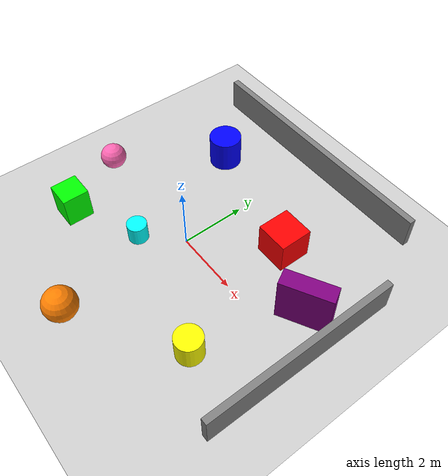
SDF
<?xml version="1.0" ?>
<sdf version="1.6">
  <world name="default">

    <!-- A global light source -->
    <light name='sun' type='directional'>
      <cast_shadows>1</cast_shadows>
      <pose>0 0 10 0 -0 0</pose>
      <diffuse>0.8 0.8 0.8 1</diffuse>
      <specular>0.2 0.2 0.2 1</specular>
      <attenuation>
        <range>1000</range>
        <constant>0.9</constant>
        <linear>0.01</linear>
        <quadratic>0.001</quadratic>
      </attenuation>
      <direction>-0.5 0.1 -0.9</direction>
    </light>

    <!-- A ground plane -->
    <model name='ground_plane'>
      <static>true</static>
      <link name='link'>
        <collision name='collision'>
          <geometry>
            <plane>
              <normal>0 0 1</normal>
              <size>100 100</size>
            </plane>
          </geometry>
        </collision>
        <visual name='visual'>
          <cast_shadows>false</cast_shadows>
          <geometry>
            <plane>
              <normal>0 0 1</normal>
              <size>100 100</size>
            </plane>
          </geometry>
          <material>
            <script>
              <uri>file://media/materials/scripts/gazebo.material</uri>
              <name>Gazebo/Grey</name>
            </script>
          </material>
        </visual>
      </link>
    </model>

    <!-- Physics settings -->
    <physics type="ode">
      <real_time_update_rate>1000.0</real_time_update_rate>
      <max_step_size>0.001</max_step_size>
      <real_time_factor>1</real_time_factor>
    </physics>

    <scene>
      <ambient>0.4 0.4 0.4 1</ambient>
      <background>0.7 0.7 0.7 1</background>
      <shadows>1</shadows>
    </scene>

    <gravity>0 0 -9.8</gravity>

    <!-- Obstacle 1: Red Box -->
    <model name="box_obstacle_1">
      <pose>2 2 0.5 0 0 0</pose>
      <static>true</static>
      <link name="link">
        <collision name="collision">
          <geometry>
            <box>
              <size>1 1 1</size>
            </box>
          </geometry>
        </collision>
        <visual name="visual">
          <geometry>
            <box>
              <size>1 1 1</size>
            </box>
          </geometry>
          <material>
            <ambient>1 0 0 1</ambient>
            <diffuse>1 0 0 1</diffuse>
            <specular>0.1 0.1 0.1 1</specular>
          </material>
        </visual>
      </link>
    </model>

    <!-- Obstacle 2: Blue Cylinder -->
    <model name="cylinder_obstacle_1">
      <pose>-2 3 0.5 0 0 0</pose>
      <static>true</static>
      <link name="link">
        <collision name="collision">
          <geometry>
            <cylinder>
              <radius>0.5</radius>
              <length>1.0</length>
            </cylinder>
          </geometry>
        </collision>
        <visual name="visual">
          <geometry>
            <cylinder>
              <radius>0.5</radius>
              <length>1.0</length>
            </cylinder>
          </geometry>
          <material>
            <ambient>0 0 1 1</ambient>
            <diffuse>0 0 1 1</diffuse>
            <specular>0.1 0.1 0.1 1</specular>
          </material>
        </visual>
      </link>
    </model>

    <!-- Obstacle 3: Green Box -->
    <model name="box_obstacle_2">
      <pose>-3 -2 0.5 0 0 0</pose>
      <static>true</static>
      <link name="link">
        <collision name="collision">
          <geometry>
            <box>
              <size>0.8 0.8 1</size>
            </box>
          </geometry>
        </collision>
        <visual name="visual">
          <geometry>
            <box>
              <size>0.8 0.8 1</size>
            </box>
          </geometry>
          <material>
            <ambient>0 1 0 1</ambient>
            <diffuse>0 1 0 1</diffuse>
            <specular>0.1 0.1 0.1 1</specular>
          </material>
        </visual>
      </link>
    </model>

    <!-- Obstacle 4: Yellow Cylinder -->
    <model name="cylinder_obstacle_2">
      <pose>3 -2 0.4 0 0 0</pose>
      <static>true</static>
      <link name="link">
        <collision name="collision">
          <geometry>
            <cylinder>
              <radius>0.4</radius>
              <length>0.8</length>
            </cylinder>
          </geometry>
        </collision>
        <visual name="visual">
          <geometry>
            <cylinder>
              <radius>0.4</radius>
              <length>0.8</length>
            </cylinder>
          </geometry>
          <material>
            <ambient>1 1 0 1</ambient>
            <diffuse>1 1 0 1</diffuse>
            <specular>0.1 0.1 0.1 1</specular>
          </material>
        </visual>
      </link>
    </model>

    <!-- Obstacle 5: Orange Sphere -->
    <model name="sphere_obstacle_1">
      <pose>0 -4 0.5 0 0 0</pose>
      <static>true</static>
      <link name="link">
        <collision name="collision">
          <geometry>
            <sphere>
              <radius>0.5</radius>
            </sphere>
          </geometry>
        </collision>
        <visual name="visual">
          <geometry>
            <sphere>
              <radius>0.5</radius>
            </sphere>
          </geometry>
          <material>
            <ambient>1 0.5 0 1</ambient>
            <diffuse>1 0.5 0 1</diffuse>
            <specular>0.1 0.1 0.1 1</specular>
          </material>
        </visual>
      </link>
    </model>

    <!-- Obstacle 6: Purple Box -->
    <model name="box_obstacle_3">
      <pose>4 1 0.75 0 0 0.5</pose>
      <static>true</static>
      <link name="link">
        <collision name="collision">
          <geometry>
            <box>
              <size>1.5 0.5 1.5</size>
            </box>
          </geometry>
        </collision>
        <visual name="visual">
          <geometry>
            <box>
              <size>1.5 0.5 1.5</size>
            </box>
          </geometry>
          <material>
            <ambient>0.5 0 0.5 1</ambient>
            <diffuse>0.5 0 0.5 1</diffuse>
            <specular>0.1 0.1 0.1 1</specular>
          </material>
        </visual>
      </link>
    </model>

    <!-- Obstacle 7: Cyan Cylinder -->
    <model name="cylinder_obstacle_3">
      <pose>-1 -1 0.3 0 0 0</pose>
      <static>true</static>
      <link name="link">
        <collision name="collision">
          <geometry>
            <cylinder>
              <radius>0.3</radius>
              <length>0.6</length>
            </cylinder>
          </geometry>
        </collision>
        <visual name="visual">
          <geometry>
            <cylinder>
              <radius>0.3</radius>
              <length>0.6</length>
            </cylinder>
          </geometry>
          <material>
            <ambient>0 1 1 1</ambient>
            <diffuse>0 1 1 1</diffuse>
            <specular>0.1 0.1 0.1 1</specular>
          </material>
        </visual>
      </link>
    </model>

    <!-- Obstacle 8: Pink Sphere -->
    <model name="sphere_obstacle_2">
      <pose>-4 0 0.4 0 0 0</pose>
      <static>true</static>
      <link name="link">
        <collision name="collision">
          <geometry>
            <sphere>
              <radius>0.4</radius>
            </sphere>
          </geometry>
        </collision>
        <visual name="visual">
          <geometry>
            <sphere>
              <radius>0.4</radius>
            </sphere>
          </geometry>
          <material>
            <ambient>1 0.4 0.7 1</ambient>
            <diffuse>1 0.4 0.7 1</diffuse>
            <specular>0.1 0.1 0.1 1</specular>
          </material>
        </visual>
      </link>
    </model>

    <!-- Wall 1: Long gray wall -->
    <model name="wall_1">
      <pose>0 5 0.5 0 0 0</pose>
      <static>true</static>
      <link name="link">
        <collision name="collision">
          <geometry>
            <box>
              <size>8 0.2 1</size>
            </box>
          </geometry>
        </collision>
        <visual name="visual">
          <geometry>
            <box>
              <size>8 0.2 1</size>
            </box>
          </geometry>
          <material>
            <ambient>0.5 0.5 0.5 1</ambient>
            <diffuse>0.5 0.5 0.5 1</diffuse>
            <specular>0.1 0.1 0.1 1</specular>
          </material>
        </visual>
      </link>
    </model>

    <!-- Wall 2: Side wall -->
    <model name="wall_2">
      <pose>5 0 0.5 0 0 1.5708</pose>
      <static>true</static>
      <link name="link">
        <collision name="collision">
          <geometry>
            <box>
              <size>6 0.2 1</size>
            </box>
          </geometry>
        </collision>
        <visual name="visual">
          <geometry>
            <box>
              <size>6 0.2 1</size>
            </box>
          </geometry>
          <material>
            <ambient>0.5 0.5 0.5 1</ambient>
            <diffuse>0.5 0.5 0.5 1</diffuse>
            <specular>0.1 0.1 0.1 1</specular>
          </material>
        </visual>
      </link>
    </model>

  </world>
</sdf>
